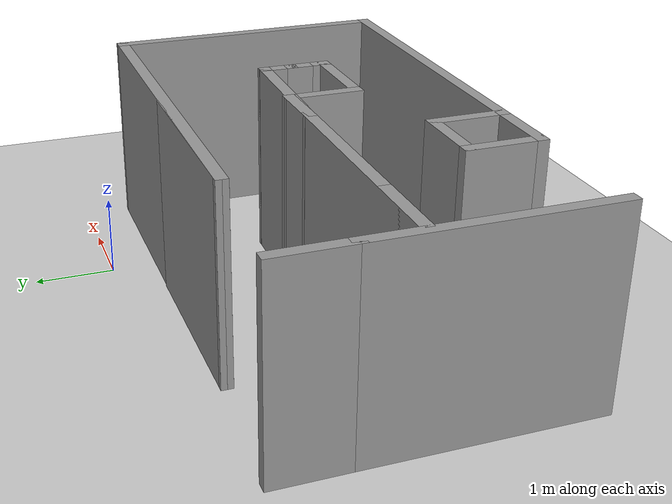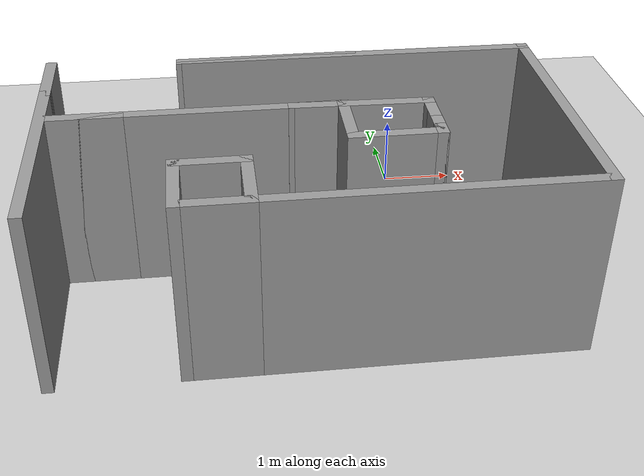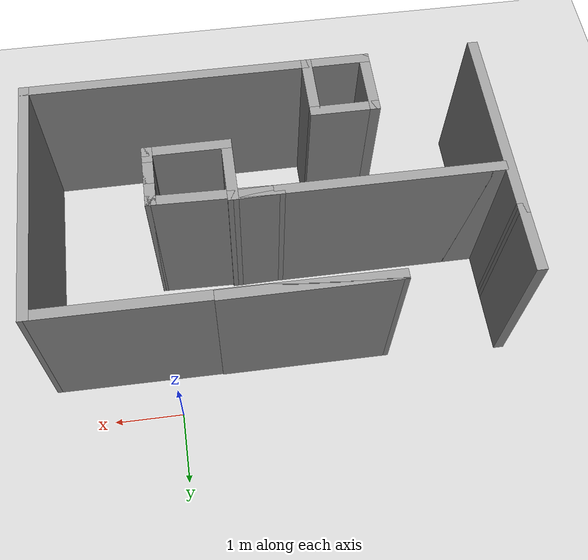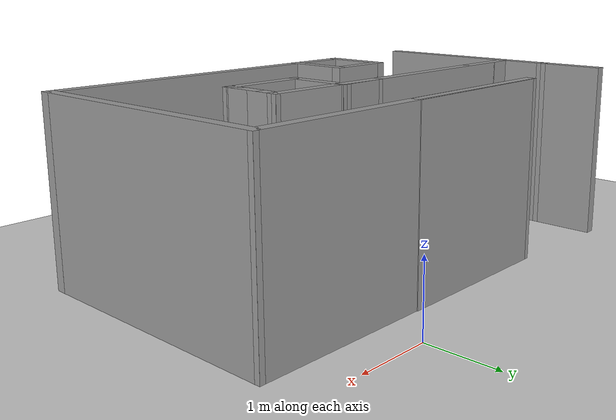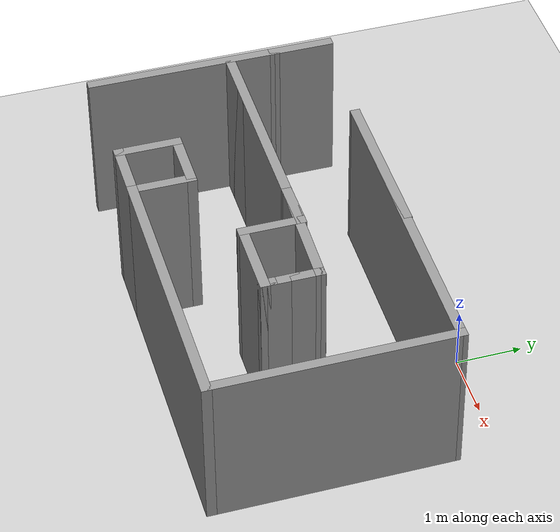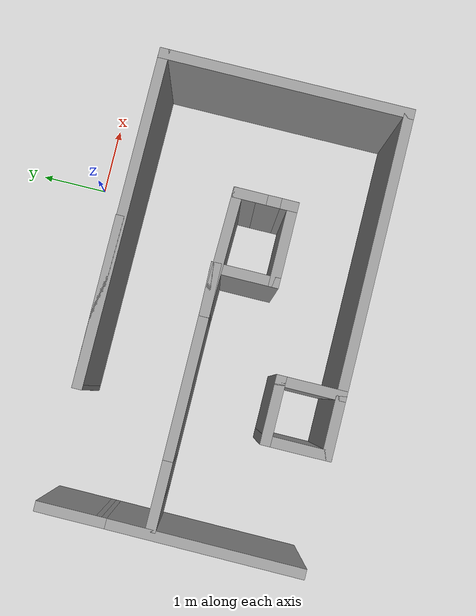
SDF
<sdf version="1.6">
 <world name="default">
  <light name="sun" type="directional">
   <pose>0 0 10 0 -0 0</pose>
   <diffuse>0.8 0.8 0.8 1</diffuse>
   <specular>0.1 0.1 0.1 1</specular>
   <attenuation>
    <range>1000</range>
    <constant>0.9</constant>
    <linear>0.01</linear>
    <quadratic>0.001</quadratic>
   </attenuation>
   <direction>-0.5 0.5 -1</direction>
  </light>
  <model name="ground_plane">
   <static>1</static>
   <link name="link">
    <collision name="collision">
     <geometry><plane><normal>0 0 1</normal><size>100 100</size></plane></geometry>
     <surface><friction><ode><mu>100</mu><mu2>50</mu2></ode></friction></surface>
    </collision>
    <visual name="visual">
     <cast_shadows>0</cast_shadows>
     <geometry><plane><normal>0 0 1</normal><size>100 100</size></plane></geometry>
     <material>
      <script><uri>file://media/materials/scripts/gazebo.material</uri><name>Gazebo/Grey</name></script>
     </material>
    </visual>
   </link>
  </model>
  <gravity>0 0 -9.8</gravity>
  <magnetic_field>6e-06 2.3e-05 -4.2e-05</magnetic_field>
  <atmosphere type="adiabatic"/>
  <physics name="default_physics" default="0" type="ode">
   <max_step_size>0.001</max_step_size>
   <real_time_factor>1</real_time_factor>
   <real_time_update_rate>1000</real_time_update_rate>
  </physics>
  <scene><ambient>0.4 0.4 0.4 1</ambient><background>0.7 0.7 0.7 1</background><shadows>1</shadows></scene>
  <spherical_coordinates>
   <surface_model>EARTH_WGS84</surface_model>
   <latitude_deg>0</latitude_deg>
   <longitude_deg>0</longitude_deg>
   <elevation>0</elevation>
   <heading_deg>0</heading_deg>
  </spherical_coordinates>
  <model name="lab2">
   <pose>-1.54498 -2.39013 0 0 -0 0</pose>
   <link name="Wall_0">
    <collision name="Wall_0_Collision">
     <geometry><box><size>2.99002 0.15 2.5</size></box></geometry>
     <pose>0 0 1.25 0 -0 0</pose>
    </collision>
    <visual name="Wall_0_Visual">
     <pose>0 0 1.25 0 -0 0</pose>
     <geometry><box><size>2.99002 0.15 2.5</size></box></geometry>
     <material>
      <script><uri>file://media/materials/scripts/gazebo.material</uri><name>Gazebo/Grey</name></script>
      <ambient>1 1 1 1</ambient>
     </material>
    </visual>
    <pose>-3.29002 -0.429868 0 0 -0 1.56727</pose>
   </link>
   <link name="Wall_12">
    <collision name="Wall_12_Collision">
     <geometry><box><size>1 0.15 2.5</size></box></geometry>
     <pose>0 0 1.25 0 -0 0</pose>
    </collision>
    <visual name="Wall_12_Visual">
     <pose>0 0 1.25 0 -0 0</pose>
     <geometry><box><size>1 0.15 2.5</size></box></geometry>
     <material>
      <script><uri>file://media/materials/scripts/gazebo.material</uri><name>Gazebo/Grey</name></script>
      <ambient>1 1 1 1</ambient>
     </material>
    </visual>
    <pose>-2.75002 0.290132 0 0 -0 3.14159</pose>
   </link>
   <link name="Wall_13">
    <collision name="Wall_13_Collision">
     <geometry><box><size>3.21002 0.15 2.5</size></box></geometry>
     <pose>0 0 1.25 0 -0 0</pose>
    </collision>
    <visual name="Wall_13_Visual">
     <pose>0 0 1.25 0 -0 0</pose>
     <geometry><box><size>3.21002 0.15 2.5</size></box></geometry>
     <material>
      <script><uri>file://media/materials/scripts/gazebo.material</uri><name>Gazebo/Grey</name></script>
      <ambient>1 1 1 1</ambient>
     </material>
    </visual>
    <pose>-1.64502 0.290132 0 0 -0 0</pose>
   </link>
   <link name="Wall_16">
    <collision name="Wall_16_Collision">
     <geometry><box><size>1.01 0.15 2.5</size></box></geometry>
     <pose>0 0 1.25 0 -0 0</pose>
    </collision>
    <visual name="Wall_16_Visual">
     <pose>0 0 1.25 0 -0 0</pose>
     <geometry><box><size>1.01 0.15 2.5</size></box></geometry>
     <material>
      <script><uri>file://media/materials/scripts/gazebo.material</uri><name>Gazebo/Grey</name></script>
      <ambient>1 1 1 1</ambient>
     </material>
    </visual>
    <pose>-3.28502 1.42013 0 0 0 -1.5708</pose>
   </link>
   <link name="Wall_18">
    <collision name="Wall_18_Collision">
     <geometry><box><size>2.5 0.15 2.5</size></box></geometry>
     <pose>0 0 1.25 0 -0 0</pose>
    </collision>
    <visual name="Wall_18_Visual">
     <pose>0 0 1.25 0 -0 0</pose>
     <geometry><box><size>2.5 0.15 2.5</size></box></geometry>
     <material>
      <script><uri>file://media/materials/scripts/gazebo.material</uri><name>Gazebo/Grey</name></script>
      <ambient>1 1 1 1</ambient>
     </material>
    </visual>
    <pose>-0.340024 1.76013 0 0 -0 3.14159</pose>
   </link>
   <link name="Wall_19">
    <collision name="Wall_19_Collision">
     <geometry><box><size>4.96004 0.15 2.5</size></box></geometry>
     <pose>0 0 1.25 0 -0 0</pose>
    </collision>
    <visual name="Wall_19_Visual">
     <pose>0 0 1.25 0 -0 0</pose>
     <geometry><box><size>4.96004 0.15 2.5</size></box></geometry>
     <material>
      <script><uri>file://media/materials/scripts/gazebo.material</uri><name>Gazebo/Grey</name></script>
      <ambient>1 1 1 1</ambient>
     </material>
    </visual>
    <pose>0.889976 1.75013 0 0 0 -0.004158</pose>
   </link>
   <link name="Wall_21">
    <collision name="Wall_21_Collision">
     <geometry><box><size>1 0.15 2.5</size></box></geometry>
     <pose>0 0 1.25 0 -0 0</pose>
    </collision>
    <visual name="Wall_21_Visual">
     <pose>0 0 1.25 0 -0 0</pose>
     <geometry><box><size>1 0.15 2.5</size></box></geometry>
     <material>
      <script><uri>file://media/materials/scripts/gazebo.material</uri><name>Gazebo/Grey</name></script>
      <ambient>1 1 1 1</ambient>
     </material>
    </visual>
    <pose>0.514976 -0.124868 0 0 0 -1.5708</pose>
   </link>
   <link name="Wall_22">
    <collision name="Wall_22_Collision">
     <geometry><box><size>1.25 0.15 2.5</size></box></geometry>
     <pose>0 0 1.25 0 -0 0</pose>
    </collision>
    <visual name="Wall_22_Visual">
     <pose>0 0 1.25 0 -0 0</pose>
     <geometry><box><size>1.25 0.15 2.5</size></box></geometry>
     <material>
      <script><uri>file://media/materials/scripts/gazebo.material</uri><name>Gazebo/Grey</name></script>
      <ambient>1 1 1 1</ambient>
     </material>
    </visual>
    <pose>1.06498 -0.549868 0 0 -0 0</pose>
   </link>
   <link name="Wall_23">
    <collision name="Wall_23_Collision">
     <geometry><box><size>0.25 0.15 2.5</size></box></geometry>
     <pose>0 0 1.25 0 -0 0</pose>
    </collision>
    <visual name="Wall_23_Visual">
     <pose>0 0 1.25 0 -0 0</pose>
     <geometry><box><size>0.25 0.15 2.5</size></box></geometry>
     <material>
      <script><uri>file://media/materials/scripts/gazebo.material</uri><name>Gazebo/Grey</name></script>
      <ambient>1 1 1 1</ambient>
     </material>
    </visual>
    <pose>1.61498 -0.499868 0 0 -0 1.5708</pose>
   </link>
   <link name="Wall_24">
    <collision name="Wall_24_Collision">
     <geometry><box><size>0.5 0.15 2.5</size></box></geometry>
     <pose>0 0 1.25 0 -0 0</pose>
    </collision>
    <visual name="Wall_24_Visual">
     <pose>0 0 1.25 0 -0 0</pose>
     <geometry><box><size>0.5 0.15 2.5</size></box></geometry>
     <material>
      <script><uri>file://media/materials/scripts/gazebo.material</uri><name>Gazebo/Grey</name></script>
      <ambient>1 1 1 1</ambient>
     </material>
    </visual>
    <pose>1.61498 -0.274868 0 0 -0 1.5708</pose>
   </link>
   <link name="Wall_25">
    <collision name="Wall_25_Collision">
     <geometry><box><size>0.5 0.15 2.5</size></box></geometry>
     <pose>0 0 1.25 0 -0 0</pose>
    </collision>
    <visual name="Wall_25_Visual">
     <pose>0 0 1.25 0 -0 0</pose>
     <geometry><box><size>0.5 0.15 2.5</size></box></geometry>
     <material>
      <script><uri>file://media/materials/scripts/gazebo.material</uri><name>Gazebo/Grey</name></script>
      <ambient>1 1 1 1</ambient>
     </material>
    </visual>
    <pose>1.61498 0.075132 0 0 -0 1.5708</pose>
   </link>
   <link name="Wall_26">
    <collision name="Wall_26_Collision">
     <geometry><box><size>0.15 0.15 2.5</size></box></geometry>
     <pose>0 0 1.25 0 -0 0</pose>
    </collision>
    <visual name="Wall_26_Visual">
     <pose>0 0 1.25 0 -0 0</pose>
     <geometry><box><size>0.15 0.15 2.5</size></box></geometry>
     <material>
      <script><uri>file://media/materials/scripts/gazebo.material</uri><name>Gazebo/Grey</name></script>
      <ambient>1 1 1 1</ambient>
     </material>
    </visual>
    <pose>1.61498 0.250132 0 0 -0 0</pose>
   </link>
   <link name="Wall_28">
    <collision name="Wall_28_Collision">
     <geometry><box><size>0.780079 0.15 2.5</size></box></geometry>
     <pose>0 0 1.25 0 -0 0</pose>
    </collision>
    <visual name="Wall_28_Visual">
     <pose>0 0 1.25 0 -0 0</pose>
     <geometry><box><size>0.780079 0.15 2.5</size></box></geometry>
     <material>
      <script><uri>file://media/materials/scripts/gazebo.material</uri><name>Gazebo/Grey</name></script>
      <ambient>1 1 1 1</ambient>
     </material>
    </visual>
    <pose>0.199976 0.295132 0 0 0 -3.12572</pose>
   </link>
   <link name="Wall_29">
    <collision name="Wall_29_Collision">
     <geometry><box><size>1.88046 0.15 2.5</size></box></geometry>
     <pose>0 0 1.25 0 -0 0</pose>
    </collision>
    <visual name="Wall_29_Visual">
     <pose>0 0 1.25 0 -0 0</pose>
     <geometry><box><size>1.88046 0.15 2.5</size></box></geometry>
     <material>
      <script><uri>file://media/materials/scripts/gazebo.material</uri><name>Gazebo/Grey</name></script>
      <ambient>1 1 1 1</ambient>
     </material>
    </visual>
    <pose>0.749976 0.270132 0 0 0 -0.023117</pose>
   </link>
   <link name="Wall_3">
    <collision name="Wall_3_Collision">
     <geometry><box><size>1.02052 0.15 2.5</size></box></geometry>
     <pose>0 0 1.25 0 -0 0</pose>
    </collision>
    <visual name="Wall_3_Visual">
     <pose>0 0 1.25 0 -0 0</pose>
     <geometry><box><size>1.02052 0.15 2.5</size></box></geometry>
     <material>
      <script><uri>file://media/materials/scripts/gazebo.material</uri><name>Gazebo/Grey</name></script>
      <ambient>1 1 1 1</ambient>
     </material>
    </visual>
    <pose>-1.64502 -1.39487 0 0 -0 1.5708</pose>
   </link>
   <link name="Wall_4">
    <collision name="Wall_4_Collision">
     <geometry><box><size>1 0.15 2.5</size></box></geometry>
     <pose>0 0 1.25 0 -0 0</pose>
    </collision>
    <visual name="Wall_4_Visual">
     <pose>0 0 1.25 0 -0 0</pose>
     <geometry><box><size>1 0.15 2.5</size></box></geometry>
     <material>
      <script><uri>file://media/materials/scripts/gazebo.material</uri><name>Gazebo/Grey</name></script>
      <ambient>1 1 1 1</ambient>
     </material>
    </visual>
    <pose>-1.22002 -0.959868 0 0 -0 0</pose>
   </link>
   <link name="Wall_5">
    <collision name="Wall_5_Collision">
     <geometry><box><size>1.02 0.15 2.5</size></box></geometry>
     <pose>0 0 1.25 0 -0 0</pose>
    </collision>
    <visual name="Wall_5_Visual">
     <pose>0 0 1.25 0 -0 0</pose>
     <geometry><box><size>1.02 0.15 2.5</size></box></geometry>
     <material>
      <script><uri>file://media/materials/scripts/gazebo.material</uri><name>Gazebo/Grey</name></script>
      <ambient>1 1 1 1</ambient>
     </material>
    </visual>
    <pose>-0.795024 -1.39487 0 0 0 -1.5708</pose>
   </link>
   <link name="Wall_6">
    <collision name="Wall_6_Collision">
     <geometry><box><size>1 0.15 2.5</size></box></geometry>
     <pose>0 0 1.25 0 -0 0</pose>
    </collision>
    <visual name="Wall_6_Visual">
     <pose>0 0 1.25 0 -0 0</pose>
     <geometry><box><size>1 0.15 2.5</size></box></geometry>
     <material>
      <script><uri>file://media/materials/scripts/gazebo.material</uri><name>Gazebo/Grey</name></script>
      <ambient>1 1 1 1</ambient>
     </material>
    </visual>
    <pose>-1.22002 -1.82987 0 0 -0 3.14159</pose>
   </link>
   <link name="Wall_8">
    <collision name="Wall_8_Collision">
     <geometry><box><size>4.2402 0.15 2.5</size></box></geometry>
     <pose>0 0 1.25 0 -0 0</pose>
    </collision>
    <visual name="Wall_8_Visual">
     <pose>0 0 1.25 0 -0 0</pose>
     <geometry><box><size>4.2402 0.15 2.5</size></box></geometry>
     <material>
      <script><uri>file://media/materials/scripts/gazebo.material</uri><name>Gazebo/Grey</name></script>
      <ambient>1 1 1 1</ambient>
     </material>
    </visual>
    <pose>1.24998 -1.82987 0 0 -0 0</pose>
   </link>
   <link name="Wall_9">
    <collision name="Wall_9_Collision">
     <geometry><box><size>3.72 0.15 2.5</size></box></geometry>
     <pose>0 0 1.25 0 -0 0</pose>
    </collision>
    <visual name="Wall_9_Visual">
     <pose>0 0 1.25 0 -0 0</pose>
     <geometry><box><size>3.72 0.15 2.5</size></box></geometry>
     <material>
      <script><uri>file://media/materials/scripts/gazebo.material</uri><name>Gazebo/Grey</name></script>
      <ambient>1 1 1 1</ambient>
     </material>
    </visual>
    <pose>3.29498 -0.044868 0 0 -0 1.5708</pose>
   </link>
   <static>1</static>
  </model>
 </world>
</sdf>
